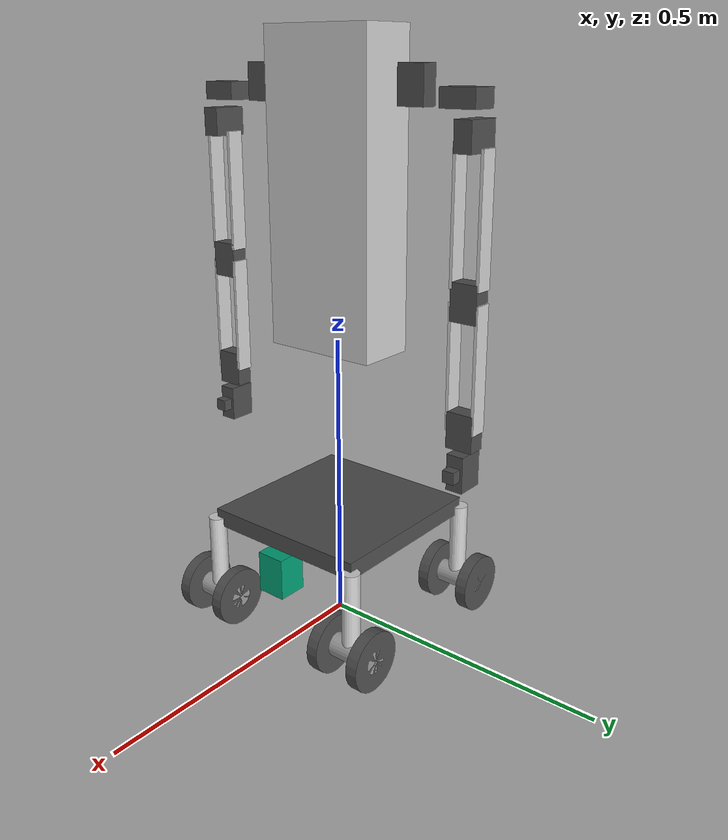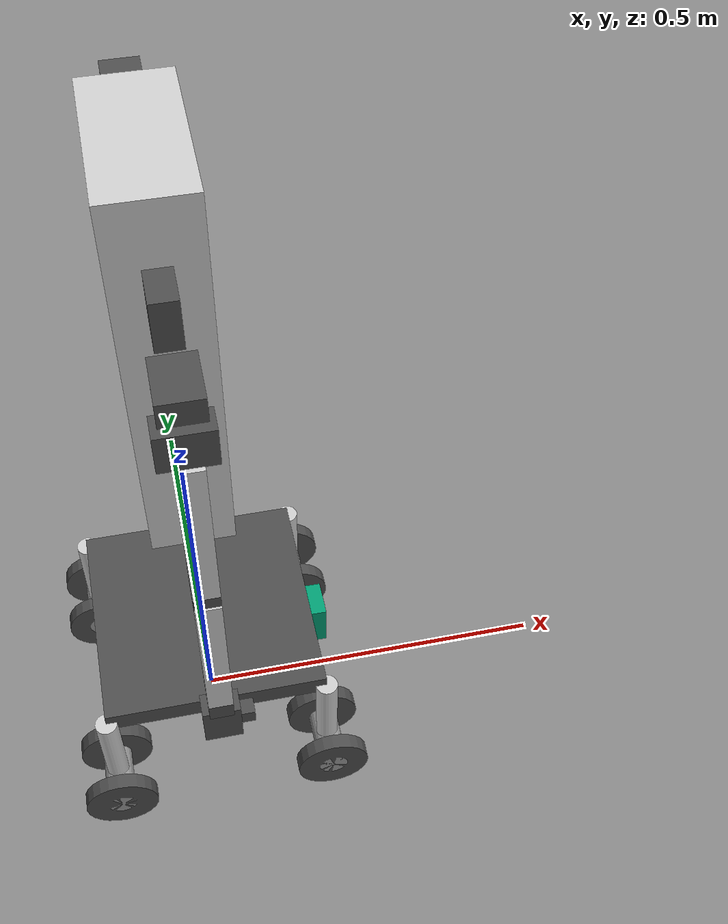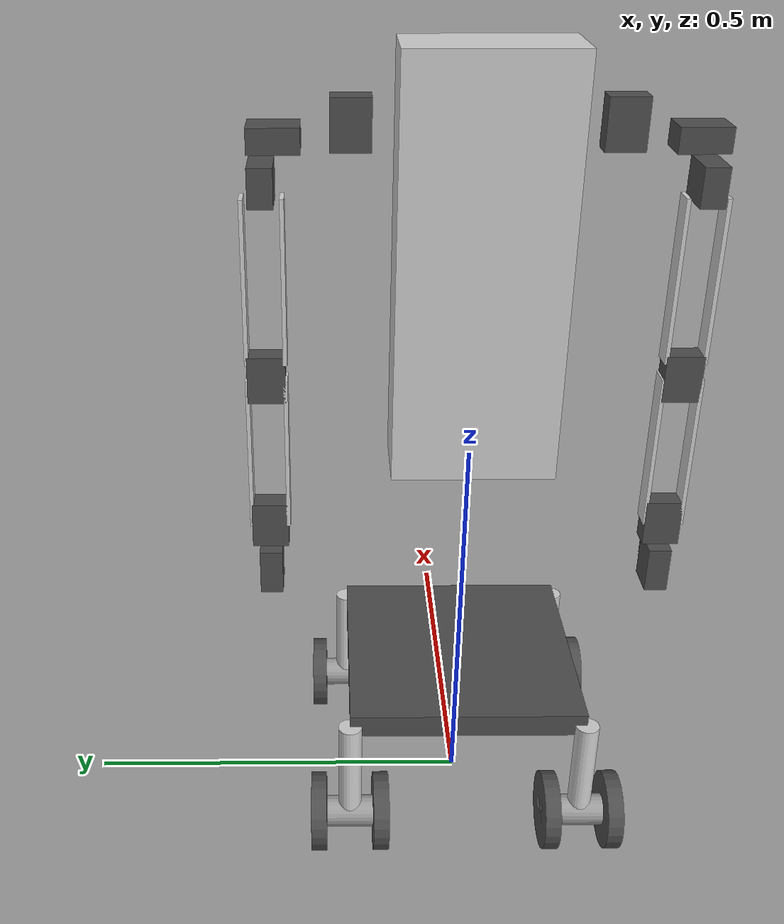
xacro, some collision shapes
<?xml version="1.0"?>
<robot name="spur"
       xmlns:sensor="http://playerstage.sourceforge.net/gazebo/xmlschema/#sensor"
       xmlns:controller="http://playerstage.sourceforge.net/gazebo/xmlschema/#controller"
       xmlns:interface="http://playerstage.sourceforge.net/gazebo/xmlschema/#interface"
       xmlns:xacro="http://ros.org/wiki/xacro">

  <xacro:property name="ns" value="spur" />

  <!-- include materials -->
  <xacro:include filename="$(find spur_description)/urdf/materials.urdf.xacro" />
  <xacro:include filename="$(find spur_description)/urdf/spur.gazebo.xacro" />

  <!-- constants -->
  <property name="M_PI" value="3.1415926535897931" />

  <property name="wheel_radius" value="0.05" />
  <property name="wheel_width" value="0.02" />

  <property name="base_width" value="0.30" />
  <property name="base_height" value="0.030" />
  <property name="caster_offset_x" value="0.15" />
  <property name="caster_offset_y" value="0.15" />
  <property name="caster_offset_z" value="0.14" />

  <!-- Hokuyo https://www.hokuyo-aut.jp/02sensor/07scanner/urg_04lx.html -->
  <property name="hokuyo_length" value="0.07" />
  <property name="hokuyo_radius" value="0.043" /> <!-- Because max surface area of Hokuyo laser is not cylindrical, this isn't accurate, which shouldn't matter. -->

  <property name="mx160_effort" value="8.3" /> <!--  8.3 N/m ?? 45rpm -> 4.71 rad/s-->
  <property name="mx160_velocity" value="4.71" />
  <!-- inertia -->
  <macro name="cylinder_inertia" params="m r h">
    <inertia  ixx="${m*(3*r*r+h*h)/12}" ixy = "0" ixz = "0"
              iyy="${m*(3*r*r+h*h)/12}" iyz = "0" izz="${m*r*r/2}" />
  </macro>

  <macro name="box_inertia" params="m x y z">
    <inertia  ixx="${m*(y*y+z*z)/12}" ixy = "0" ixz = "0"
              iyy="${m*(z*z+x*x)/12}" iyz = "0" izz="${m*(x*x+y*y)/12}" />
  </macro>
  <!-- wheel -->
  <xacro:macro name="odom_wheel_tire" params="parent suffix offset">

    <joint name="${parent}_wheel_tire_${suffix}" type="fixed">
      <origin xyz="0 0 ${offset}" rpy="0 0 0" />
      <parent link="${parent}_wheel_link" />
      <child link="${parent}_wheel_tire_${suffix}_link" />
    </joint>

    <link name="${parent}_wheel_tire_${suffix}_link">
      <inertial>
        <mass value="1.0" />
        <origin xyz="0 0 0" />
        <cylinder_inertia m="1.0" r="${wheel_radius}" h="${wheel_width}" />
      </inertial>
      <visual>
        <geometry>
          <cylinder length="${wheel_width}" radius="${wheel_radius}"/>
        </geometry>
        <material name="DarkGrey" />
      </visual>
      <collision>
        <geometry>
          <cylinder length="${wheel_width}" radius="${wheel_radius}"/>
        </geometry>
      </collision>
    </link>

    <xacro:gazebo_tire_link name="${parent}_wheel_tire_${suffix}_link"  color="Black" />

  </xacro:macro>

  <xacro:macro name="odom_wheel_schaft" params="suffix rot_axis">

    <joint name="${suffix}_wheel_joint" type="continuous">
      <axis xyz="0 0 ${rot_axis}" />
      <limit effort="${mx160_effort*500}" velocity="${mx160_velocity*100}"/>
      <dynamics damping="0.0" friction="0.0" />
      <origin xyz="0 0 -${caster_offset_z}" rpy="-${M_PI/2} 0 0" />
      <parent link="${suffix}_rotation_link" />
      <child link="${suffix}_wheel_link" />
    </joint>

    <xacro:simple_transmission name="${suffix}_wheel_joint" interface="EffortJointInterface" />

    <link name="${suffix}_wheel_link">
      <inertial>
        <mass value="5.0" />
        <origin xyz="0 0 0" />
        <cylinder_inertia m="5.0" r="0.02" h="0.100" />
      </inertial>
      <visual>
        <geometry>
          <cylinder length="0.100" radius="0.02"/>
        </geometry>
        <material name="Grey" />
      </visual>
      <collision>
        <geometry>
          <cylinder length="${0.100 - wheel_width*2 - 0.01}" radius="0.02"/> <!-- avoid collision to tire -->
        </geometry>
      </collision>
    </link>

    <xacro:gazebo_tire_link name="${suffix}_wheel_link"  color="Grey" />

  </xacro:macro>

  <xacro:macro name="odom_wheel_rotate" params="suffix">
    <joint name="${suffix}_rotation_joint" type="revolute">
      <axis xyz="0 0 -1" />
      <limit lower="${-90*M_PI/180.0}" upper="${90*M_PI/180.0}" effort="${mx160_effort}" velocity="${mx160_velocity}"/>
      <dynamics damping="0.0" friction="0.0" />
      <xacro:insert_block name="origin" />
      <parent link="base_link"/>
      <child link="${suffix}_rotation_link" />
    </joint>

    <xacro:simple_transmission name="${suffix}_rotation_joint" interface="EffortJointInterface" />

    <link name="${suffix}_rotation_link">
      <inertial>
        <mass value="1.0" />
        <origin xyz="0 0 -${caster_offset_z/2}" rpy="0 0 0" />
        <cylinder_inertia m="1.0" r="0.015" h="${caster_offset_z}" />
      </inertial>
      <visual>
        <origin xyz="0 0 -${caster_offset_z/2}" rpy="0 0 0" />
        <geometry>
          <cylinder length="${caster_offset_z}" radius="0.015"/>
        </geometry>
        <material name="LightGrey" />
      </visual>
      <collision>
        <origin xyz="0 0 -${caster_offset_z/2}" rpy="0 0 0" />
        <geometry>
          <cylinder length="${caster_offset_z-0.05}" radius="0.015"/> <!-- avoid collision for wheel_schaft radius(0.02) -->
        </geometry>
      </collision>
    </link>

    <xacro:gazebo_base_link name="${suffix}_rotation_link"  color="White" />

  </xacro:macro>

  <xacro:macro name="odom_wheel" params="suffix *origin rot_axis">

    <xacro:odom_wheel_rotate suffix="${suffix}" />
    <xacro:odom_wheel_schaft suffix="${suffix}" rot_axis="${rot_axis}" />
    <xacro:odom_wheel_tire parent="${suffix}" suffix="l" offset="${0.05-wheel_width/2}"  />
    <xacro:odom_wheel_tire parent="${suffix}" suffix="r" offset="-${0.05-wheel_width/2}" />

  </xacro:macro>

  <!-- arm -->
  <xacro:macro name="mx_106_link" params="name *origin">

    <link name="${name}">
      <inertial>
        <xacro:insert_block name="origin" />
        <mass value="0.153" />
        <box_inertia m="0.153" x="0.029" y="0.0595" z="0.046" />
      </inertial>
      <visual>
        <xacro:insert_block name="origin" />
        <geometry>
          <box size="0.029 0.0595 0.046" />
        </geometry>
        <material name="DarkGrey" />
      </visual>
      <collision>
        <xacro:insert_block name="origin" />
        <geometry>
          <box size="${0.029-0.01} ${0.0595-0.01} ${0.046-0.01}" />
        </geometry>
      </collision>
    </link>

    <xacro:gazebo_arm_link name="${name}"  color="Black" />

  </xacro:macro>

  <xacro:macro name="arm_link_element" params="name length offset" >
    <link name="${name}">
      <inertial>
        <origin xyz="-${length/2 - 0.0145} 0 ${offset}" />
        <mass value="0.1" />
        <box_inertia m="0.1" x="${length-0.1}" y="0.029" z="0.005" />
      </inertial>
      <visual>
        <origin xyz="-${length/2 - 0.0145} 0 ${offset}" />
        <geometry>
          <box size="${length} 0.029 0.005" />
        </geometry>
        <material name="LightGrey" />
      </visual>
      <collision>
        <origin xyz="-${length/2 - 0.0145} 0 ${offset}"/>
        <geometry>
          <box size="${length-0.1} 0.029 0.005" /> <!-- -0.06 to avoid self collision -->
        </geometry>
      </collision>

      <xacro:gazebo_arm_link name="${name}"  color="White" />

    </link>
  </xacro:macro>

  <xacro:macro name="arm_link_body" params="name length *origin" >
    <xacro:arm_link_element name="${name}_body_1" length="${length}" offset="0.023"/>
    <xacro:arm_link_element name="${name}_body_2" length="${length}" offset="-0.023"/>
    <joint name="${name}_body_fixed" type="fixed">
      <xacro:insert_block name="origin" />
      <parent link="${name}_link" />
      <child link="${name}_body_1" />
    </joint>
    <joint name="${name}_body_2_fixed" type="fixed">
      <parent link="${name}_body_1" />
      <child link="${name}_body_2" />
    </joint>
  </xacro:macro>

  <xacro:macro name="arm_joint" params="parent name joint_origin_xyz joint_origin_rpy">

    <joint name="${name}_joint" type="revolute">
      <axis xyz="0 0 1" />
      <origin xyz="${joint_origin_xyz}" rpy="${joint_origin_rpy}" />
      <parent link="${parent}"/>
      <child link="${name}_link" />
      <limit lower="${-90*M_PI/180.0}" upper="${90*M_PI/180.0}" effort="${mx160_effort}" velocity="${mx160_velocity}" />
    </joint>

    <xacro:simple_transmission name="${name}_joint" interface="EffortJointInterface" />

  </xacro:macro>

  <xacro:macro name="arm_link" params="parent name joint_origin_xyz joint_origin_rpy
                                       link_origin_xyz link_origin_rpy" >
    <xacro:arm_joint parent="${parent}" name="${name}"
                     joint_origin_xyz="${joint_origin_xyz}"
                     joint_origin_rpy="${joint_origin_rpy}" />
    <xacro:mx_106_link name="${name}_link" >
      <origin xyz="${link_origin_xyz}" rpy="${link_origin_rpy}" />
    </xacro:mx_106_link>

    <xacro:gazebo_base_link name="${name}_link"  color="Black" />

  </xacro:macro>

  <xacro:macro name="arm_links" params="prefix reflect" >

    <joint name="${prefix}_base_joint" type="fixed">
      <origin xyz="0 ${reflect * -0.15} 0.7" rpy="${M_PI/2} 0 0" />
      <parent link="base_link"/>
      <child link="${prefix}_base_link" />
    </joint>

    <xacro:mx_106_link name="${prefix}_base_link" >
      <origin xyz="0 0.01525 0" rpy="0 0 0" />
    </xacro:mx_106_link>

    <xacro:arm_link parent="${prefix}_base_link"
                    name="${prefix}_shoulder_p"
                    joint_origin_xyz="0 0 0" joint_origin_rpy="0 0 0"
                    link_origin_xyz="0 0 ${reflect * (0.1 - 0.01525)}"
                    link_origin_rpy="${M_PI/2} 0 ${M_PI/2}" />
    <xacro:arm_link parent="${prefix}_shoulder_p_link"
                    name="${prefix}_shoulder_r"
                    joint_origin_xyz="0 0 ${reflect * 0.1}"
                    joint_origin_rpy="0 ${M_PI/2} 0"
                    link_origin_xyz="0 -0.05 0"
                    link_origin_rpy="${M_PI/2} 0 0" />
    <xacro:arm_link parent="${prefix}_shoulder_r_link"
                    name="${prefix}_shoulder_y"
                    joint_origin_xyz="0 -0.1 0.0"
                    joint_origin_rpy="${M_PI/2} 0 0"
                    link_origin_xyz="0 0 ${0.2 - 0.01515}"
                    link_origin_rpy="${M_PI/2} 0 ${M_PI/2}" />
    <xacro:arm_link parent="${prefix}_shoulder_y_link"
                    name="${prefix}_elbow_p"
                    joint_origin_xyz="0 0 0.2" joint_origin_rpy="0 ${M_PI/2} 0"
                    link_origin_xyz="-${0.2 - 0.01525} 0 0"
                    link_origin_rpy="0 0 ${M_PI/2}" />
    <xacro:arm_link parent="${prefix}_elbow_p_link"
                    name="${prefix}_wrist_p"
                    joint_origin_xyz="-0.2 0 0" joint_origin_rpy="0 0
                                                                  0"
                    link_origin_xyz="-0.05 0 0"
                    link_origin_rpy="${M_PI/2} ${M_PI/2} 0" />
    <xacro:arm_joint parent="${prefix}_wrist_p_link"
                     name="${prefix}_wrist_r"
                     joint_origin_xyz="-0.05 0.03 0"
                     joint_origin_rpy="-${M_PI/2} -${M_PI/2} 0" />
    <link name="${prefix}_wrist_r_link" >
      <inertial>
        <origin xyz="0 0 0" />
        <mass value="0.001" />
        <inertia  ixx="${(0.001/2*0.001/2+0.001/2*0.001/2)/3*0.001}"
                  ixy="0.0" ixz="0.0"
                  iyy="${(0.001/2*0.001/2+0.001/2*0.001/2)/3*0.001}"
                  iyz="0.0"
                  izz="${(0.001/2*0.001/2+0.001/2*0.001/2)/3*0.001}"
                  />
      </inertial>
      <visual>
        <geometry>
          <box size="0.02 0.02 0.02" />
        </geometry>
        <material name="DarkGrey" />
      </visual>
      <collision>
        <geometry>
          <box size="0.12 0.01 0.01" />
        </geometry>
      </collision>
    </link>
    <xacro:gazebo_arm_link name="${prefix}_wrist_r_link" color="Black" />

    <xacro:arm_link_body name="${prefix}_elbow_p" length="0.2" >
      <origin xyz="0 0 0" rpy="0 0 0" />
    </xacro:arm_link_body>
    <xacro:arm_link_body name="${prefix}_shoulder_y" length="0.2" >
      <origin xyz="0 0 -0.02" rpy="0 ${M_PI/2} 0" />
    </xacro:arm_link_body>

  </xacro:macro>

  <!-- base -->
  <link name="base_link">
    <inertial>
      <mass value="10.0" />
      <origin xyz="0 0 0" />
      <box_inertia m="10.0" x="${base_width}" y="${base_width}" z="${base_height}" />
    </inertial>
    <visual>
      <origin xyz="0 0 0" rpy="0 0 0" />
      <geometry>
        <box size="${base_width} ${base_width} ${base_height}" />
      </geometry>
      <material name="DarkGrey" />
    </visual>
    <collision>
      <origin xyz="0 0 0" rpy="0 0 0" />
      <geometry>
        <box size="${base_width} ${base_width} ${base_height}" />
      </geometry>
    </collision>
  </link>

  <xacro:gazebo_base_link name="base_link"  color="Black" />

  <link name="base_footprint" />
  <joint name="footprint_to_base" type="fixed" >
    <origin xyz="0 0 0.190" rpy="0 0 0" />
    <parent link="base_footprint"/>
    <child link="base_link" />
  </joint>

  odom base
  <xacro:odom_wheel suffix="fl" rot_axis="1">
    <origin xyz="${caster_offset_x} ${caster_offset_y} 0.0" rpy="0 0 0" />
  </xacro:odom_wheel>
  <xacro:odom_wheel suffix="fr" rot_axis="-1">
    <origin xyz="${caster_offset_x} -${caster_offset_y} 0.0" rpy="0 0 0" />
  </xacro:odom_wheel>
  <xacro:odom_wheel suffix="bl" rot_axis="1">
    <origin xyz="-${caster_offset_x} ${caster_offset_y} 0.0" rpy="0 0 0" />
  </xacro:odom_wheel>
  <xacro:odom_wheel suffix="br" rot_axis="-1">
    <origin xyz="-${caster_offset_x} -${caster_offset_y} 0.0" rpy="0 0 0" />
  </xacro:odom_wheel>

  <!-- URG -->
  <!-- http://answers.ros.org/question/44691/how-to-put-hokuyo-laser-sensor-on-p2os/?answer=44785#post-id-44785   -->
  <link name="hokuyo_sensor_link" type="laser">
    <inertial>
      <mass value="0.160" />
      <origin xyz="0 0 0.0" />
      <box_inertia m="0.160" x="0.05" y="0.05" z="0.05" />
    </inertial>
    <visual>
      <origin xyz="0 0 0" rpy="0 0 0"/>
      <geometry>
        <mesh filename="package://gazebo_plugins/test/multi_robot_scenario/meshes/laser/hokuyo.dae"/>
      </geometry>
     </visual>
     <collision>
       <origin xyz="0 0 0.0" />
       <geometry>
         <box size="0.05 0.05 0.07" />
       </geometry>
     </collision>
  </link>
  <joint name="laser_to_base" type="fixed">
    <origin xyz="${caster_offset_x} 0 -0.05" rpy="3.14 0 0" />
    <parent link="base_link" />
    <child link="hokuyo_sensor_link"/>
  </joint>

  <!-- arm -->
  <xacro:arm_links prefix="rarm" reflect="1" />
  <xacro:arm_links prefix="larm" reflect="-1" />

  <!-- body -->
  <link name="body">
    <inertial>
      <mass value="10.0" />
      <origin xyz="0 0 0.25" />
      <box_inertia m="10.0" x="0.1" y="0.2" z="0.5" />
    </inertial>
    <visual>
      <origin xyz="0 0 0.25" />
      <geometry>
        <box size="0.1 0.2 0.5" />
      </geometry>
      <material name="LightGrey" />
    </visual>
    <collision>
      <origin xyz="0 0 0.25" />
      <geometry>
        <box size="0.1 0.2 0.5" />
      </geometry>
    </collision>
  </link>

  <xacro:gazebo_base_link name="body"  color="White" />

  <joint name="base_to_body" type="fixed" >
    <origin xyz="0 0 0.30" rpy="0 0 0" />
    <parent link="base_link"/>
    <child link="body" />
  </joint>

</robot>
